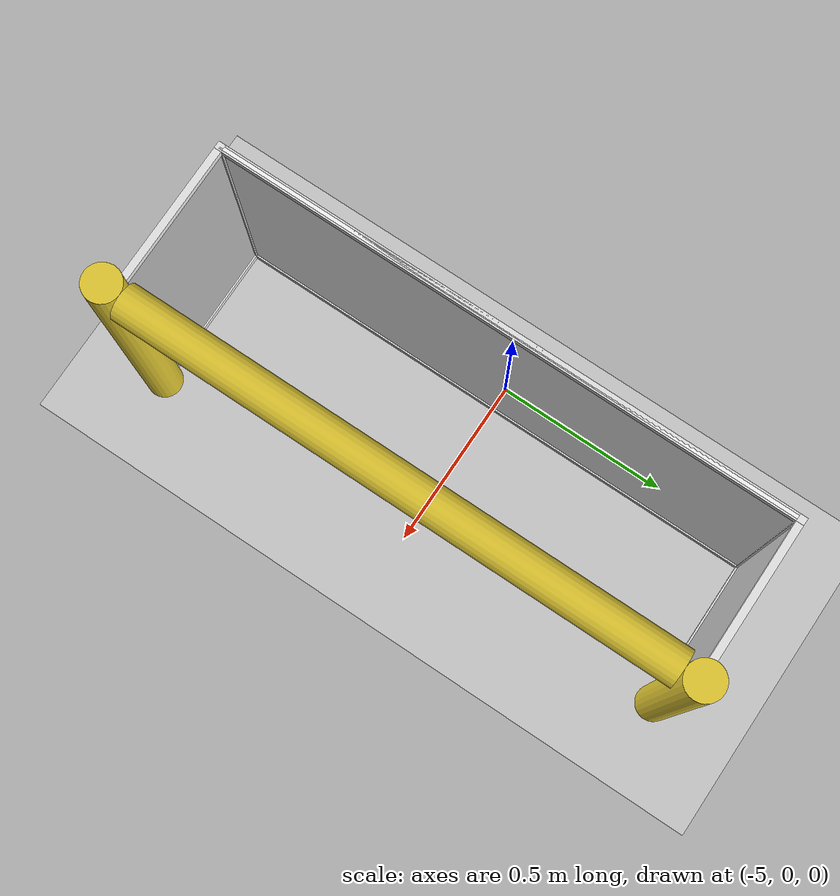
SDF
<sdf version="1.7">
 <world name="default">
  <model name="ground_plane">
   <static>1</static>
   <link name="link">
    <collision name="collision">
     <geometry><plane><normal>0 0 1</normal><size>100 100</size></plane></geometry>
     <surface><friction><ode><mu>100</mu><mu2>50</mu2></ode></friction></surface>
    </collision>
    <visual name="visual">
     <cast_shadows>0</cast_shadows>
     <geometry><plane><normal>0 0 1</normal><size>100 100</size></plane></geometry>
     <material>
      <script><uri>file://media/materials/scripts/gazebo.material</uri><name>Gazebo/Grey</name></script>
     </material>
    </visual>
   </link>
  </model>
  <model name="WALLS">
   <link name="Wall_15">
    <pose>0 -3.78 0 0 -0 3.1397</pose>
    <inertial>
     <mass>1</mass>
     <inertia><ixx>1</ixx><ixy>0</ixy><ixz>0</ixz><iyy>1</iyy><iyz>0</iyz><izz>1</izz></inertia>
    </inertial>
    <visual name="Wall_15_Visual">
     <pose>0 0 2.5 0 -0 0</pose>
     <geometry><box><size>10.69 0.15 5</size></box></geometry>
     <material>
      <script><uri>file://media/materials/scripts/gazebo.material</uri><name>Gazebo/Grey</name></script>
      <ambient>1 1 1 1</ambient>
      <shader type="pixel"><normal_map>__default__</normal_map></shader>
      <diffuse>0.7 0.7 0.7 1</diffuse>
      <specular>0.01 0.01 0.01 1</specular>
      <emissive>0 0 0 1</emissive>
     </material>
     <meta><layer>0</layer></meta>
     <transparency>1</transparency>
    </visual>
    <collision name="Wall_15_Collision">
     <pose>0 0 2.5 0 -0 0</pose>
     <geometry><box><size>10.69 0.15 5</size></box></geometry>
     <surface>
      <friction>
       <ode><mu>1</mu><mu2>1</mu2><fdir1>0 0 0</fdir1><slip1>0</slip1><slip2>0</slip2></ode>
       <torsional>
        <coefficient>1</coefficient>
        <patch_radius>0</patch_radius>
        <surface_radius>0</surface_radius>
        <use_patch_radius>1</use_patch_radius>
        <ode><slip>0</slip></ode>
       </torsional>
      </friction>
      <bounce><restitution_coefficient>1</restitution_coefficient><threshold>1e+06</threshold></bounce>
      <contact>
       <collide_without_contact>0</collide_without_contact>
       <collide_without_contact_bitmask>1</collide_without_contact_bitmask>
       <collide_bitmask>1</collide_bitmask>
       <ode>
        <soft_cfm>0</soft_cfm>
        <soft_erp>0.2</soft_erp>
        <kp>1e+13</kp>
        <kd>1</kd>
        <max_vel>0.01</max_vel>
        <min_depth>0</min_depth>
       </ode>
       <bullet>
        <split_impulse>1</split_impulse>
        <split_impulse_penetration_threshold>-0.01</split_impulse_penetration_threshold>
        <soft_cfm>0</soft_cfm>
        <soft_erp>0.2</soft_erp>
        <kp>1e+13</kp>
        <kd>1</kd>
       </bullet>
      </contact>
     </surface>
    </collision>
   </link>
   <link name="Wall_18">
    <pose>0 3.78 0 0 0 -0.001898</pose>
    <inertial>
     <mass>1</mass>
     <inertia><ixx>1</ixx><ixy>0</ixy><ixz>0</ixz><iyy>1</iyy><iyz>0</iyz><izz>1</izz></inertia>
    </inertial>
    <visual name="Wall_18_Visual">
     <pose>0 0 2.5 0 -0 0</pose>
     <geometry><box><size>10.69 0.15 5</size></box></geometry>
     <material>
      <script><uri>file://media/materials/scripts/gazebo.material</uri><name>Gazebo/Grey</name></script>
      <ambient>1 1 1 1</ambient>
      <shader type="pixel"><normal_map>__default__</normal_map></shader>
      <diffuse>0.7 0.7 0.7 1</diffuse>
      <specular>0.01 0.01 0.01 1</specular>
      <emissive>0 0 0 1</emissive>
     </material>
     <meta><layer>0</layer></meta>
     <transparency>1</transparency>
    </visual>
    <collision name="Wall_18_Collision">
     <pose>0 0 2.5 0 -0 0</pose>
     <geometry><box><size>10.69 0.15 5</size></box></geometry>
     <surface>
      <friction>
       <ode><mu>1</mu><mu2>1</mu2><fdir1>0 0 0</fdir1><slip1>0</slip1><slip2>0</slip2></ode>
       <torsional>
        <coefficient>1</coefficient>
        <patch_radius>0</patch_radius>
        <surface_radius>0</surface_radius>
        <use_patch_radius>1</use_patch_radius>
        <ode><slip>0</slip></ode>
       </torsional>
      </friction>
      <bounce><restitution_coefficient>1</restitution_coefficient><threshold>1e+06</threshold></bounce>
      <contact>
       <collide_without_contact>0</collide_without_contact>
       <collide_without_contact_bitmask>1</collide_without_contact_bitmask>
       <collide_bitmask>1</collide_bitmask>
       <ode>
        <soft_cfm>0</soft_cfm>
        <soft_erp>0.2</soft_erp>
        <kp>1e+13</kp>
        <kd>1</kd>
        <max_vel>0.01</max_vel>
        <min_depth>0</min_depth>
       </ode>
       <bullet>
        <split_impulse>1</split_impulse>
        <split_impulse_penetration_threshold>-0.01</split_impulse_penetration_threshold>
        <soft_cfm>0</soft_cfm>
        <soft_erp>0.2</soft_erp>
        <kp>1e+13</kp>
        <kd>1</kd>
       </bullet>
      </contact>
     </surface>
    </collision>
   </link>
   <link name="Wall_20">
    <pose>-5.27 0.01 0 0 0 -1.5708</pose>
    <inertial>
     <mass>1</mass>
     <inertia><ixx>1</ixx><ixy>0</ixy><ixz>0</ixz><iyy>1</iyy><iyz>0</iyz><izz>1</izz></inertia>
    </inertial>
    <visual name="Wall_20_Visual">
     <pose>0 0 2.5 0 -0 0</pose>
     <geometry><box><size>7.71 0.15 5</size></box></geometry>
     <material>
      <script><uri>file://media/materials/scripts/gazebo.material</uri><name>Gazebo/Grey</name></script>
      <ambient>1 1 1 1</ambient>
      <shader type="pixel"><normal_map>__default__</normal_map></shader>
      <diffuse>0.7 0.7 0.7 1</diffuse>
      <specular>0.01 0.01 0.01 1</specular>
      <emissive>0 0 0 1</emissive>
     </material>
     <meta><layer>0</layer></meta>
     <transparency>1</transparency>
    </visual>
    <collision name="Wall_20_Collision">
     <pose>0 0 2.5 0 -0 0</pose>
     <geometry><box><size>7.71 0.15 5</size></box></geometry>
     <surface>
      <friction>
       <ode><mu>1</mu><mu2>1</mu2><fdir1>0 0 0</fdir1><slip1>0</slip1><slip2>0</slip2></ode>
       <torsional>
        <coefficient>1</coefficient>
        <patch_radius>0</patch_radius>
        <surface_radius>0</surface_radius>
        <use_patch_radius>1</use_patch_radius>
        <ode><slip>0</slip></ode>
       </torsional>
      </friction>
      <bounce><restitution_coefficient>1</restitution_coefficient><threshold>1e+06</threshold></bounce>
      <contact>
       <collide_without_contact>0</collide_without_contact>
       <collide_without_contact_bitmask>1</collide_without_contact_bitmask>
       <collide_bitmask>1</collide_bitmask>
       <ode>
        <soft_cfm>0</soft_cfm>
        <soft_erp>0.2</soft_erp>
        <kp>1e+13</kp>
        <kd>1</kd>
        <max_vel>0.01</max_vel>
        <min_depth>0</min_depth>
       </ode>
       <bullet>
        <split_impulse>1</split_impulse>
        <split_impulse_penetration_threshold>-0.01</split_impulse_penetration_threshold>
        <soft_cfm>0</soft_cfm>
        <soft_erp>0.2</soft_erp>
        <kp>1e+13</kp>
        <kd>1</kd>
       </bullet>
      </contact>
     </surface>
    </collision>
   </link>
   <link name="Wall_4">
    <pose>5.27 -0.01 0 0 -0 1.5708</pose>
    <inertial>
     <mass>1</mass>
     <inertia><ixx>1</ixx><ixy>0</ixy><ixz>0</ixz><iyy>1</iyy><iyz>0</iyz><izz>1</izz></inertia>
    </inertial>
    <visual name="Wall_4_Visual">
     <pose>0 0 2.5 0 -0 0</pose>
     <geometry><box><size>7.71 0.15 5</size></box></geometry>
     <material>
      <script><uri>file://media/materials/scripts/gazebo.material</uri><name>Gazebo/Grey</name></script>
      <ambient>1 1 1 1</ambient>
      <shader type="pixel"><normal_map>__default__</normal_map></shader>
      <diffuse>0.7 0.7 0.7 1</diffuse>
      <specular>0.01 0.01 0.01 1</specular>
      <emissive>0 0 0 1</emissive>
     </material>
     <meta><layer>0</layer></meta>
     <transparency>1</transparency>
    </visual>
    <collision name="Wall_4_Collision">
     <pose>0 0 2.5 0 -0 0</pose>
     <geometry><box><size>7.71 0.15 5</size></box></geometry>
     <surface>
      <friction>
       <ode><mu>1</mu><mu2>1</mu2><fdir1>0 0 0</fdir1><slip1>0</slip1><slip2>0</slip2></ode>
       <torsional>
        <coefficient>1</coefficient>
        <patch_radius>0</patch_radius>
        <surface_radius>0</surface_radius>
        <use_patch_radius>1</use_patch_radius>
        <ode><slip>0</slip></ode>
       </torsional>
      </friction>
      <bounce><restitution_coefficient>1</restitution_coefficient><threshold>1e+06</threshold></bounce>
      <contact>
       <collide_without_contact>0</collide_without_contact>
       <collide_without_contact_bitmask>1</collide_without_contact_bitmask>
       <collide_bitmask>1</collide_bitmask>
       <ode>
        <soft_cfm>0</soft_cfm>
        <soft_erp>0.2</soft_erp>
        <kp>1e+13</kp>
        <kd>1</kd>
        <max_vel>0.01</max_vel>
        <min_depth>0</min_depth>
       </ode>
       <bullet>
        <split_impulse>1</split_impulse>
        <split_impulse_penetration_threshold>-0.01</split_impulse_penetration_threshold>
        <soft_cfm>0</soft_cfm>
        <soft_erp>0.2</soft_erp>
        <kp>1e+13</kp>
        <kd>1</kd>
       </bullet>
      </contact>
     </surface>
    </collision>
   </link>
   <static>1</static>
   <pose>0 0.01 0 0 -0 0</pose>
  </model>
  <model name="RoboCup_2014_SPL_Goal">
   <link name="left_post">
    <pose>0 0.8 0.45 0 -0 0</pose>
    <inertial>
     <mass>1</mass>
     <inertia><ixx>1</ixx><ixy>0</ixy><ixz>0</ixz><iyy>1</iyy><iyz>0</iyz><izz>1</izz></inertia>
    </inertial>
    <visual name="visual">
     <geometry><cylinder><radius>0.05</radius><length>0.9</length></cylinder></geometry>
     <material>
      <script><uri>file://media/materials/scripts/gazebo.material</uri><name>Gazebo/ZincYellow</name></script>
      <shader type="pixel"><normal_map>__default__</normal_map></shader>
     </material>
    </visual>
    <collision name="collision">
     <geometry><cylinder><radius>0.05</radius><length>0.9</length></cylinder></geometry>
     <surface>
      <friction>
       <ode><mu>1</mu><mu2>1</mu2><fdir1>0 0 0</fdir1><slip1>0</slip1><slip2>0</slip2></ode>
       <torsional>
        <coefficient>1</coefficient>
        <patch_radius>0</patch_radius>
        <surface_radius>0</surface_radius>
        <use_patch_radius>1</use_patch_radius>
        <ode><slip>0</slip></ode>
       </torsional>
      </friction>
      <bounce><restitution_coefficient>1</restitution_coefficient><threshold>1e+06</threshold></bounce>
      <contact>
       <collide_without_contact>0</collide_without_contact>
       <collide_without_contact_bitmask>1</collide_without_contact_bitmask>
       <collide_bitmask>1</collide_bitmask>
       <ode>
        <soft_cfm>0</soft_cfm>
        <soft_erp>0.2</soft_erp>
        <kp>1e+13</kp>
        <kd>1</kd>
        <max_vel>0.01</max_vel>
        <min_depth>0</min_depth>
       </ode>
       <bullet>
        <split_impulse>1</split_impulse>
        <split_impulse_penetration_threshold>-0.01</split_impulse_penetration_threshold>
        <soft_cfm>0</soft_cfm>
        <soft_erp>0.2</soft_erp>
        <kp>1e+13</kp>
        <kd>1</kd>
       </bullet>
      </contact>
     </surface>
    </collision>
   </link>
   <link name="center_net">
    <pose>0.44 -0 0.4 0 -0 0</pose>
    <inertial>
     <mass>1</mass>
     <inertia><ixx>1</ixx><ixy>0</ixy><ixz>0</ixz><iyy>1</iyy><iyz>0</iyz><izz>1</izz></inertia>
    </inertial>
    <visual name="visual">
     <geometry><box><size>0.01 1.6 0.8</size></box></geometry>
     <material>
      <script>
       <uri>model://robocup09_spl_field/materials/scripts/</uri>
       <uri>model://robocup09_spl_field/materials/textures/</uri>
       <name>RoboCup/Net</name>
      </script>
      <shader type="pixel"><normal_map>__default__</normal_map></shader>
      <ambient>1 1 1 1</ambient>
      <diffuse>1 1 1 1</diffuse>
      <specular>0 0 0 1</specular>
      <emissive>0 0 0 1</emissive>
     </material>
    </visual>
    <collision name="collision">
     <geometry><box><size>0.01 1.6 0.8</size></box></geometry>
     <surface>
      <friction>
       <ode><mu>1</mu><mu2>1</mu2><fdir1>0 0 0</fdir1><slip1>0</slip1><slip2>0</slip2></ode>
       <torsional>
        <coefficient>1</coefficient>
        <patch_radius>0</patch_radius>
        <surface_radius>0</surface_radius>
        <use_patch_radius>1</use_patch_radius>
        <ode><slip>0</slip></ode>
       </torsional>
      </friction>
      <bounce><restitution_coefficient>0</restitution_coefficient><threshold>1e+06</threshold></bounce>
      <contact>
       <collide_without_contact>0</collide_without_contact>
       <collide_without_contact_bitmask>1</collide_without_contact_bitmask>
       <collide_bitmask>1</collide_bitmask>
       <ode>
        <soft_cfm>0</soft_cfm>
        <soft_erp>0.2</soft_erp>
        <kp>1e+13</kp>
        <kd>1</kd>
        <max_vel>0.01</max_vel>
        <min_depth>0</min_depth>
       </ode>
       <bullet>
        <split_impulse>1</split_impulse>
        <split_impulse_penetration_threshold>-0.01</split_impulse_penetration_threshold>
        <soft_cfm>0</soft_cfm>
        <soft_erp>0.2</soft_erp>
        <kp>1e+13</kp>
        <kd>1</kd>
       </bullet>
      </contact>
     </surface>
    </collision>
   </link>
   <link name="center_support_horiz_lower">
    <pose>0.44 -0 0.01 3.14159 1.57079 3.14159</pose>
    <visual name="visual">
     <geometry><box><size>0.02 1.58 0.02</size></box></geometry>
     <material>
      <script><uri>file://media/materials/scripts/gazebo.material</uri><name>Gazebo/White</name></script>
      <shader type="pixel"/>
     </material>
    </visual>
    <collision name="collision">
     <geometry><box><size>0.02 1.58 0.02</size></box></geometry>
     <surface>
      <friction>
       <ode><mu>1</mu><mu2>1</mu2><fdir1>0 0 0</fdir1><slip1>0</slip1><slip2>0</slip2></ode>
       <torsional>
        <coefficient>1</coefficient>
        <patch_radius>0</patch_radius>
        <surface_radius>0</surface_radius>
        <use_patch_radius>1</use_patch_radius>
        <ode><slip>0</slip></ode>
       </torsional>
      </friction>
      <bounce><restitution_coefficient>0</restitution_coefficient><threshold>1e+06</threshold></bounce>
      <contact>
       <collide_without_contact>0</collide_without_contact>
       <collide_without_contact_bitmask>1</collide_without_contact_bitmask>
       <collide_bitmask>1</collide_bitmask>
       <ode>
        <soft_cfm>0</soft_cfm>
        <soft_erp>0.2</soft_erp>
        <kp>1e+13</kp>
        <kd>1</kd>
        <max_vel>0.01</max_vel>
        <min_depth>0</min_depth>
       </ode>
       <bullet>
        <split_impulse>1</split_impulse>
        <split_impulse_penetration_threshold>-0.01</split_impulse_penetration_threshold>
        <soft_cfm>0</soft_cfm>
        <soft_erp>0.2</soft_erp>
        <kp>1e+13</kp>
        <kd>1</kd>
       </bullet>
      </contact>
     </surface>
    </collision>
   </link>
   <link name="center_support_horiz_upper">
    <pose>0.44 -0 0.79 3.14159 1.57079 3.14159</pose>
    <visual name="visual">
     <geometry><box><size>0.02 1.58 0.02</size></box></geometry>
     <material>
      <script><uri>file://media/materials/scripts/gazebo.material</uri><name>Gazebo/White</name></script>
      <shader type="pixel"/>
     </material>
    </visual>
    <collision name="collision">
     <geometry><box><size>0.02 1.58 0.02</size></box></geometry>
     <surface>
      <friction>
       <ode><mu>1</mu><mu2>1</mu2><fdir1>0 0 0</fdir1><slip1>0</slip1><slip2>0</slip2></ode>
       <torsional>
        <coefficient>1</coefficient>
        <patch_radius>0</patch_radius>
        <surface_radius>0</surface_radius>
        <use_patch_radius>1</use_patch_radius>
        <ode><slip>0</slip></ode>
       </torsional>
      </friction>
      <bounce><restitution_coefficient>0</restitution_coefficient><threshold>1e+06</threshold></bounce>
      <contact>
       <collide_without_contact>0</collide_without_contact>
       <collide_without_contact_bitmask>1</collide_without_contact_bitmask>
       <collide_bitmask>1</collide_bitmask>
       <ode>
        <soft_cfm>0</soft_cfm>
        <soft_erp>0.2</soft_erp>
        <kp>1e+13</kp>
        <kd>1</kd>
        <max_vel>0.01</max_vel>
        <min_depth>0</min_depth>
       </ode>
       <bullet>
        <split_impulse>1</split_impulse>
        <split_impulse_penetration_threshold>-0.01</split_impulse_penetration_threshold>
        <soft_cfm>0</soft_cfm>
        <soft_erp>0.2</soft_erp>
        <kp>1e+13</kp>
        <kd>1</kd>
       </bullet>
      </contact>
     </surface>
    </collision>
   </link>
   <link name="crossbar">
    <pose>0 0 0.85 1.57006 1.57 5.8e-05</pose>
    <inertial>
     <mass>1</mass>
     <inertia><ixx>1</ixx><ixy>0</ixy><ixz>0</ixz><iyy>1</iyy><iyz>0</iyz><izz>1</izz></inertia>
    </inertial>
    <visual name="visual">
     <geometry><cylinder><radius>0.05</radius><length>1.5</length></cylinder></geometry>
     <material>
      <script><uri>file://media/materials/scripts/gazebo.material</uri><name>Gazebo/ZincYellow</name></script>
      <shader type="pixel"><normal_map>__default__</normal_map></shader>
      <ambient>0.973 0.953 0.208 1</ambient>
      <diffuse>0.973 0.953 0.208 1</diffuse>
      <specular>0.973 0.953 0.208 1</specular>
      <emissive>0 0 0 1</emissive>
     </material>
    </visual>
    <collision name="collision_1">
     <pose>-0.01 0.3 0 0 -0 0</pose>
     <geometry><box><size>0.05 0.5 1.6</size></box></geometry>
     <surface>
      <friction>
       <ode><mu>1</mu><mu2>1</mu2><fdir1>0 0 0</fdir1><slip1>0</slip1><slip2>0</slip2></ode>
       <torsional>
        <coefficient>1</coefficient>
        <patch_radius>0</patch_radius>
        <surface_radius>0</surface_radius>
        <use_patch_radius>1</use_patch_radius>
        <ode><slip>0</slip></ode>
       </torsional>
      </friction>
      <bounce><restitution_coefficient>1</restitution_coefficient><threshold>1e+06</threshold></bounce>
      <contact>
       <collide_without_contact>0</collide_without_contact>
       <collide_without_contact_bitmask>1</collide_without_contact_bitmask>
       <collide_bitmask>1</collide_bitmask>
       <ode>
        <soft_cfm>0</soft_cfm>
        <soft_erp>0.2</soft_erp>
        <kp>1e+13</kp>
        <kd>1</kd>
        <max_vel>0.01</max_vel>
        <min_depth>0</min_depth>
       </ode>
       <bullet>
        <split_impulse>1</split_impulse>
        <split_impulse_penetration_threshold>-0.01</split_impulse_penetration_threshold>
        <soft_cfm>0</soft_cfm>
        <soft_erp>0.2</soft_erp>
        <kp>1e+13</kp>
        <kd>1</kd>
       </bullet>
      </contact>
     </surface>
    </collision>
    <collision name="collision">
     <geometry><cylinder><radius>0.05</radius><length>1.5</length></cylinder></geometry>
     <surface>
      <friction>
       <ode><mu>1</mu><mu2>1</mu2><fdir1>0 0 0</fdir1><slip1>0</slip1><slip2>0</slip2></ode>
       <torsional>
        <coefficient>1</coefficient>
        <patch_radius>0</patch_radius>
        <surface_radius>0</surface_radius>
        <use_patch_radius>1</use_patch_radius>
        <ode><slip>0</slip></ode>
       </torsional>
      </friction>
      <bounce><restitution_coefficient>1</restitution_coefficient><threshold>1e+06</threshold></bounce>
      <contact>
       <collide_without_contact>0</collide_without_contact>
       <collide_without_contact_bitmask>1</collide_without_contact_bitmask>
       <collide_bitmask>1</collide_bitmask>
       <ode>
        <soft_cfm>0</soft_cfm>
        <soft_erp>0.2</soft_erp>
        <kp>1e+13</kp>
        <kd>1</kd>
        <max_vel>0.01</max_vel>
        <min_depth>0</min_depth>
       </ode>
       <bullet>
        <split_impulse>1</split_impulse>
        <split_impulse_penetration_threshold>-0.01</split_impulse_penetration_threshold>
        <soft_cfm>0</soft_cfm>
        <soft_erp>0.2</soft_erp>
        <kp>1e+13</kp>
        <kd>1</kd>
       </bullet>
      </contact>
     </surface>
    </collision>
   </link>
   <link name="left_net">
    <pose>0.24 0.8 0.4 0 -0 0</pose>
    <visual name="visual">
     <geometry><box><size>0.38 0.01 0.76</size></box></geometry>
     <material>
      <script>
       <uri>model://robocup09_spl_field/materials/scripts/</uri>
       <uri>model://robocup09_spl_field/materials/textures/</uri>
       <name>RoboCup/Net</name>
      </script>
      <shader type="pixel"/>
     </material>
    </visual>
    <collision name="collision">
     <geometry><box><size>0.38 0.01 0.76</size></box></geometry>
     <surface>
      <friction>
       <ode><mu>1</mu><mu2>1</mu2><fdir1>0 0 0</fdir1><slip1>0</slip1><slip2>0</slip2></ode>
       <torsional>
        <coefficient>1</coefficient>
        <patch_radius>0</patch_radius>
        <surface_radius>0</surface_radius>
        <use_patch_radius>1</use_patch_radius>
        <ode><slip>0</slip></ode>
       </torsional>
      </friction>
      <bounce><restitution_coefficient>0</restitution_coefficient><threshold>1e+06</threshold></bounce>
      <contact>
       <collide_without_contact>0</collide_without_contact>
       <collide_without_contact_bitmask>1</collide_without_contact_bitmask>
       <collide_bitmask>1</collide_bitmask>
       <ode>
        <soft_cfm>0</soft_cfm>
        <soft_erp>0.2</soft_erp>
        <kp>1e+13</kp>
        <kd>1</kd>
        <max_vel>0.01</max_vel>
        <min_depth>0</min_depth>
       </ode>
       <bullet>
        <split_impulse>1</split_impulse>
        <split_impulse_penetration_threshold>-0.01</split_impulse_penetration_threshold>
        <soft_cfm>0</soft_cfm>
        <soft_erp>0.2</soft_erp>
        <kp>1e+13</kp>
        <kd>1</kd>
       </bullet>
      </contact>
     </surface>
    </collision>
   </link>
   <link name="left_support_horiz_lower">
    <pose>0.24 0.8 0.01 0 -0 0</pose>
    <visual name="visual">
     <geometry><box><size>0.38 0.02 0.02</size></box></geometry>
     <material>
      <script><uri>file://media/materials/scripts/gazebo.material</uri><name>Gazebo/White</name></script>
      <shader type="pixel"/>
     </material>
    </visual>
    <collision name="collision">
     <geometry><box><size>0.38 0.02 0.02</size></box></geometry>
     <surface>
      <friction>
       <ode><mu>1</mu><mu2>1</mu2><fdir1>0 0 0</fdir1><slip1>0</slip1><slip2>0</slip2></ode>
       <torsional>
        <coefficient>1</coefficient>
        <patch_radius>0</patch_radius>
        <surface_radius>0</surface_radius>
        <use_patch_radius>1</use_patch_radius>
        <ode><slip>0</slip></ode>
       </torsional>
      </friction>
      <bounce><restitution_coefficient>0</restitution_coefficient><threshold>1e+06</threshold></bounce>
      <contact>
       <collide_without_contact>0</collide_without_contact>
       <collide_without_contact_bitmask>1</collide_without_contact_bitmask>
       <collide_bitmask>1</collide_bitmask>
       <ode>
        <soft_cfm>0</soft_cfm>
        <soft_erp>0.2</soft_erp>
        <kp>1e+13</kp>
        <kd>1</kd>
        <max_vel>0.01</max_vel>
        <min_depth>0</min_depth>
       </ode>
       <bullet>
        <split_impulse>1</split_impulse>
        <split_impulse_penetration_threshold>-0.01</split_impulse_penetration_threshold>
        <soft_cfm>0</soft_cfm>
        <soft_erp>0.2</soft_erp>
        <kp>1e+13</kp>
        <kd>1</kd>
       </bullet>
      </contact>
     </surface>
    </collision>
   </link>
   <link name="left_support_horiz_upper">
    <pose>0.24 0.8 0.79 0 -0 0</pose>
    <visual name="visual">
     <geometry><box><size>0.38 0.02 0.02</size></box></geometry>
     <material>
      <script><uri>file://media/materials/scripts/gazebo.material</uri><name>Gazebo/White</name></script>
      <shader type="pixel"/>
     </material>
    </visual>
    <collision name="collision">
     <geometry><box><size>0.38 0.02 0.02</size></box></geometry>
     <surface>
      <friction>
       <ode><mu>1</mu><mu2>1</mu2><fdir1>0 0 0</fdir1><slip1>0</slip1><slip2>0</slip2></ode>
       <torsional>
        <coefficient>1</coefficient>
        <patch_radius>0</patch_radius>
        <surface_radius>0</surface_radius>
        <use_patch_radius>1</use_patch_radius>
        <ode><slip>0</slip></ode>
       </torsional>
      </friction>
      <bounce><restitution_coefficient>0</restitution_coefficient><threshold>1e+06</threshold></bounce>
      <contact>
       <collide_without_contact>0</collide_without_contact>
       <collide_without_contact_bitmask>1</collide_without_contact_bitmask>
       <collide_bitmask>1</collide_bitmask>
       <ode>
        <soft_cfm>0</soft_cfm>
        <soft_erp>0.2</soft_erp>
        <kp>1e+13</kp>
        <kd>1</kd>
        <max_vel>0.01</max_vel>
        <min_depth>0</min_depth>
       </ode>
       <bullet>
        <split_impulse>1</split_impulse>
        <split_impulse_penetration_threshold>-0.01</split_impulse_penetration_threshold>
        <soft_cfm>0</soft_cfm>
        <soft_erp>0.2</soft_erp>
        <kp>1e+13</kp>
        <kd>1</kd>
       </bullet>
      </contact>
     </surface>
    </collision>
   </link>
   <link name="left_support_vertical">
    <pose>0.44 0.8 0.4 3.14159 1.57079 3.14159</pose>
    <visual name="visual">
     <geometry><box><size>0.8 0.02 0.02</size></box></geometry>
     <material>
      <script><uri>file://media/materials/scripts/gazebo.material</uri><name>Gazebo/White</name></script>
      <shader type="pixel"/>
     </material>
    </visual>
    <collision name="collision">
     <geometry><box><size>0.8 0.02 0.02</size></box></geometry>
     <surface>
      <friction>
       <ode><mu>1</mu><mu2>1</mu2><fdir1>0 0 0</fdir1><slip1>0</slip1><slip2>0</slip2></ode>
       <torsional>
        <coefficient>1</coefficient>
        <patch_radius>0</patch_radius>
        <surface_radius>0</surface_radius>
        <use_patch_radius>1</use_patch_radius>
        <ode><slip>0</slip></ode>
       </torsional>
      </friction>
      <bounce><restitution_coefficient>0</restitution_coefficient><threshold>1e+06</threshold></bounce>
      <contact>
       <collide_without_contact>0</collide_without_contact>
       <collide_without_contact_bitmask>1</collide_without_contact_bitmask>
       <collide_bitmask>1</collide_bitmask>
       <ode>
        <soft_cfm>0</soft_cfm>
        <soft_erp>0.2</soft_erp>
        <kp>1e+13</kp>
        <kd>1</kd>
        <max_vel>0.01</max_vel>
        <min_depth>0</min_depth>
       </ode>
       <bullet>
        <split_impulse>1</split_impulse>
        <split_impulse_penetration_threshold>-0.01</split_impulse_penetration_threshold>
        <soft_cfm>0</soft_cfm>
        <soft_erp>0.2</soft_erp>
        <kp>1e+13</kp>
        <kd>1</kd>
       </bullet>
      </contact>
     </surface>
    </collision>
   </link>
   <link name="right_net">
    <pose>0.24 -0.8 0.4 0 -0 0</pose>
    <visual name="visual">
     <geometry><box><size>0.38 0.01 0.76</size></box></geometry>
     <material>
      <script>
       <uri>model://robocup09_spl_field/materials/scripts/</uri>
       <uri>model://robocup09_spl_field/materials/textures/</uri>
       <name>RoboCup/Net</name>
      </script>
      <shader type="pixel"/>
     </material>
    </visual>
    <collision name="collision">
     <geometry><box><size>0.38 0.01 0.76</size></box></geometry>
     <surface>
      <friction>
       <ode><mu>1</mu><mu2>1</mu2><fdir1>0 0 0</fdir1><slip1>0</slip1><slip2>0</slip2></ode>
       <torsional>
        <coefficient>1</coefficient>
        <patch_radius>0</patch_radius>
        <surface_radius>0</surface_radius>
        <use_patch_radius>1</use_patch_radius>
        <ode><slip>0</slip></ode>
       </torsional>
      </friction>
      <bounce><restitution_coefficient>0</restitution_coefficient><threshold>1e+06</threshold></bounce>
      <contact>
       <collide_without_contact>0</collide_without_contact>
       <collide_without_contact_bitmask>1</collide_without_contact_bitmask>
       <collide_bitmask>1</collide_bitmask>
       <ode>
        <soft_cfm>0</soft_cfm>
        <soft_erp>0.2</soft_erp>
        <kp>1e+13</kp>
        <kd>1</kd>
        <max_vel>0.01</max_vel>
        <min_depth>0</min_depth>
       </ode>
       <bullet>
        <split_impulse>1</split_impulse>
        <split_impulse_penetration_threshold>-0.01</split_impulse_penetration_threshold>
        <soft_cfm>0</soft_cfm>
        <soft_erp>0.2</soft_erp>
        <kp>1e+13</kp>
        <kd>1</kd>
       </bullet>
      </contact>
     </surface>
    </collision>
   </link>
   <link name="right_post">
    <pose>-0 -0.8 0.45 0 -0 0</pose>
    <inertial>
     <mass>1</mass>
     <inertia><ixx>1</ixx><ixy>0</ixy><ixz>0</ixz><iyy>1</iyy><iyz>0</iyz><izz>1</izz></inertia>
    </inertial>
    <visual name="visual">
     <geometry><cylinder><radius>0.05</radius><length>0.9</length></cylinder></geometry>
     <material>
      <script><uri>file://media/materials/scripts/gazebo.material</uri><name>Gazebo/ZincYellow</name></script>
      <shader type="pixel"><normal_map>__default__</normal_map></shader>
     </material>
    </visual>
    <collision name="collision">
     <geometry><cylinder><radius>0.05</radius><length>0.9</length></cylinder></geometry>
     <surface>
      <friction>
       <ode><mu>1</mu><mu2>1</mu2><fdir1>0 0 0</fdir1><slip1>0</slip1><slip2>0</slip2></ode>
       <torsional>
        <coefficient>1</coefficient>
        <patch_radius>0</patch_radius>
        <surface_radius>0</surface_radius>
        <use_patch_radius>1</use_patch_radius>
        <ode><slip>0</slip></ode>
       </torsional>
      </friction>
      <bounce><restitution_coefficient>1</restitution_coefficient><threshold>1e+06</threshold></bounce>
      <contact>
       <collide_without_contact>0</collide_without_contact>
       <collide_without_contact_bitmask>1</collide_without_contact_bitmask>
       <collide_bitmask>1</collide_bitmask>
       <ode>
        <soft_cfm>0</soft_cfm>
        <soft_erp>0.2</soft_erp>
        <kp>1e+13</kp>
        <kd>1</kd>
        <max_vel>0.01</max_vel>
        <min_depth>0</min_depth>
       </ode>
       <bullet>
        <split_impulse>1</split_impulse>
        <split_impulse_penetration_threshold>-0.01</split_impulse_penetration_threshold>
        <soft_cfm>0</soft_cfm>
        <soft_erp>0.2</soft_erp>
        <kp>1e+13</kp>
        <kd>1</kd>
       </bullet>
      </contact>
     </surface>
    </collision>
   </link>
   <link name="right_support_horiz_lower">
    <pose>0.24 -0.8 0.01 0 -0 0</pose>
    <visual name="visual">
     <geometry><box><size>0.38 0.02 0.02</size></box></geometry>
     <material>
      <script><uri>file://media/materials/scripts/gazebo.material</uri><name>Gazebo/White</name></script>
      <shader type="pixel"/>
     </material>
    </visual>
    <collision name="collision">
     <geometry><box><size>0.38 0.02 0.02</size></box></geometry>
     <surface>
      <friction>
       <ode><mu>1</mu><mu2>1</mu2><fdir1>0 0 0</fdir1><slip1>0</slip1><slip2>0</slip2></ode>
       <torsional>
        <coefficient>1</coefficient>
        <patch_radius>0</patch_radius>
        <surface_radius>0</surface_radius>
        <use_patch_radius>1</use_patch_radius>
        <ode><slip>0</slip></ode>
       </torsional>
      </friction>
      <bounce><restitution_coefficient>0</restitution_coefficient><threshold>1e+06</threshold></bounce>
      <contact>
       <collide_without_contact>0</collide_without_contact>
       <collide_without_contact_bitmask>1</collide_without_contact_bitmask>
       <collide_bitmask>1</collide_bitmask>
       <ode>
        <soft_cfm>0</soft_cfm>
        <soft_erp>0.2</soft_erp>
        <kp>1e+13</kp>
        <kd>1</kd>
        <max_vel>0.01</max_vel>
        <min_depth>0</min_depth>
       </ode>
       <bullet>
        <split_impulse>1</split_impulse>
        <split_impulse_penetration_threshold>-0.01</split_impulse_penetration_threshold>
        <soft_cfm>0</soft_cfm>
        <soft_erp>0.2</soft_erp>
        <kp>1e+13</kp>
        <kd>1</kd>
       </bullet>
      </contact>
     </surface>
    </collision>
   </link>
   <link name="right_support_horiz_upper">
    <pose>0.24 -0.8 0.79 0 -0 0</pose>
    <visual name="visual">
     <geometry><box><size>0.38 0.02 0.02</size></box></geometry>
     <material>
      <script><uri>file://media/materials/scripts/gazebo.material</uri><name>Gazebo/White</name></script>
      <shader type="pixel"/>
     </material>
    </visual>
    <collision name="collision">
     <geometry><box><size>0.38 0.02 0.02</size></box></geometry>
     <surface>
      <friction>
       <ode><mu>1</mu><mu2>1</mu2><fdir1>0 0 0</fdir1><slip1>0</slip1><slip2>0</slip2></ode>
       <torsional>
        <coefficient>1</coefficient>
        <patch_radius>0</patch_radius>
        <surface_radius>0</surface_radius>
        <use_patch_radius>1</use_patch_radius>
        <ode><slip>0</slip></ode>
       </torsional>
      </friction>
      <bounce><restitution_coefficient>0</restitution_coefficient><threshold>1e+06</threshold></bounce>
      <contact>
       <collide_without_contact>0</collide_without_contact>
       <collide_without_contact_bitmask>1</collide_without_contact_bitmask>
       <collide_bitmask>1</collide_bitmask>
       <ode>
        <soft_cfm>0</soft_cfm>
        <soft_erp>0.2</soft_erp>
        <kp>1e+13</kp>
        <kd>1</kd>
        <max_vel>0.01</max_vel>
        <min_depth>0</min_depth>
       </ode>
       <bullet>
        <split_impulse>1</split_impulse>
        <split_impulse_penetration_threshold>-0.01</split_impulse_penetration_threshold>
        <soft_cfm>0</soft_cfm>
        <soft_erp>0.2</soft_erp>
        <kp>1e+13</kp>
        <kd>1</kd>
       </bullet>
      </contact>
     </surface>
    </collision>
   </link>
   <link name="right_support_vertical">
    <pose>0.44 -0.8 0.4 3.14159 1.57079 3.14159</pose>
    <visual name="visual">
     <geometry><box><size>0.8 0.02 0.02</size></box></geometry>
     <material>
      <script><uri>file://media/materials/scripts/gazebo.material</uri><name>Gazebo/White</name></script>
      <shader type="pixel"/>
     </material>
    </visual>
    <collision name="collision">
     <geometry><box><size>0.8 0.02 0.02</size></box></geometry>
     <surface>
      <friction>
       <ode><mu>1</mu><mu2>1</mu2><fdir1>0 0 0</fdir1><slip1>0</slip1><slip2>0</slip2></ode>
       <torsional>
        <coefficient>1</coefficient>
        <patch_radius>0</patch_radius>
        <surface_radius>0</surface_radius>
        <use_patch_radius>1</use_patch_radius>
        <ode><slip>0</slip></ode>
       </torsional>
      </friction>
      <bounce><restitution_coefficient>0</restitution_coefficient><threshold>1e+06</threshold></bounce>
      <contact>
       <collide_without_contact>0</collide_without_contact>
       <collide_without_contact_bitmask>1</collide_without_contact_bitmask>
       <collide_bitmask>1</collide_bitmask>
       <ode>
        <soft_cfm>0</soft_cfm>
        <soft_erp>0.2</soft_erp>
        <kp>1e+13</kp>
        <kd>1</kd>
        <max_vel>0.01</max_vel>
        <min_depth>0</min_depth>
       </ode>
       <bullet>
        <split_impulse>1</split_impulse>
        <split_impulse_penetration_threshold>-0.01</split_impulse_penetration_threshold>
        <soft_cfm>0</soft_cfm>
        <soft_erp>0.2</soft_erp>
        <kp>1e+13</kp>
        <kd>1</kd>
       </bullet>
      </contact>
     </surface>
    </collision>
   </link>
   <static>1</static>
   <pose>-4.5 0 0 0 0 -3.14159</pose>
  </model>
 </world>
</sdf>
